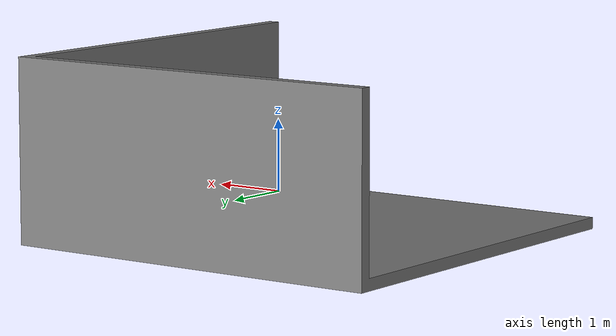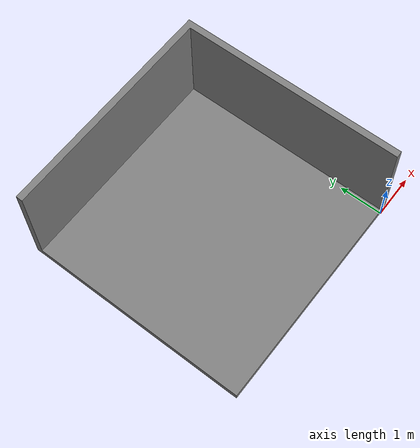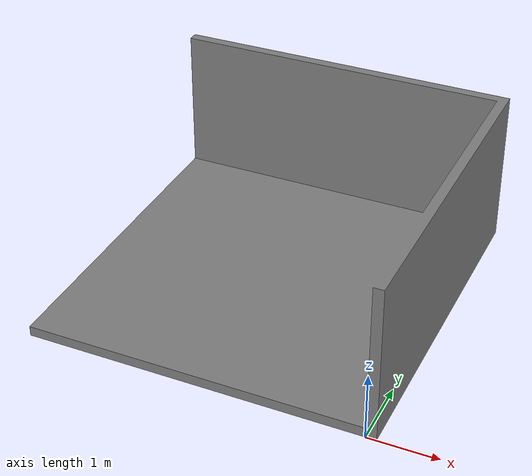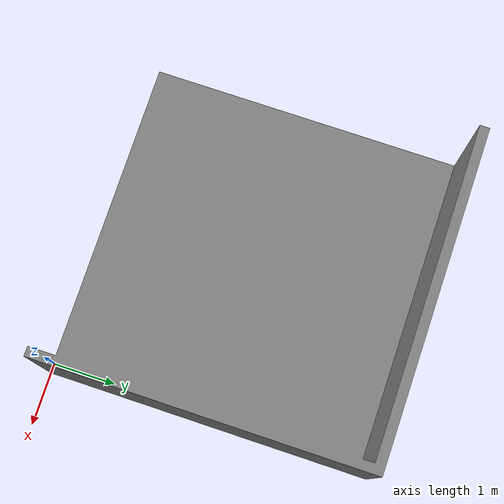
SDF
<?xml version="1.0" ?>
<sdf version="1.6">
  <model name="open_map">
    <static>true</static>
    <link name="link">
      <visual name="visual">
        <cast_shadows>true</cast_shadows>
        <geometry>
          <mesh>
            <uri>model://open_map/meshes/open_map.obj</uri>
          </mesh>
        </geometry>
        <material>
          <ambient>0.5 0.5 0.5 1</ambient>
          <diffuse>0.5 0.5 0.5 1</diffuse>
        </material>
      </visual>
      <collision name="collision">
        <geometry>
          <mesh>
            <uri>model://open_map/meshes/open_map_col.stl</uri>
          </mesh>
        </geometry>
      </collision>
    </link>
  </model>
</sdf>
